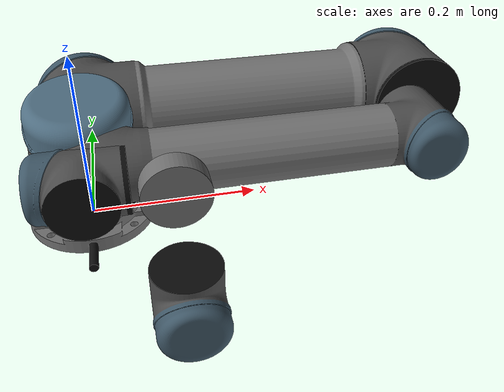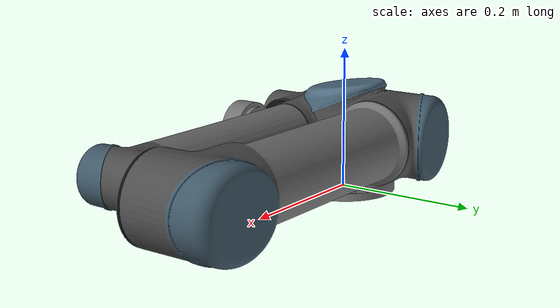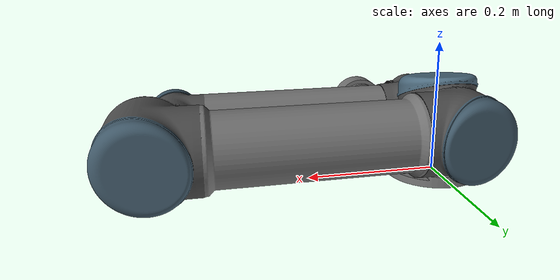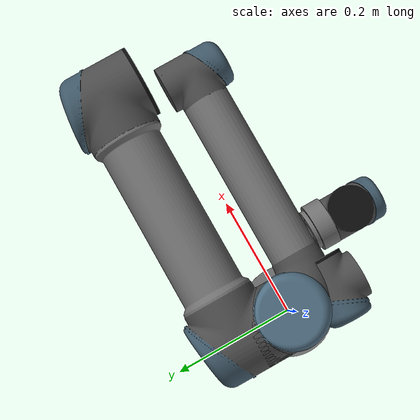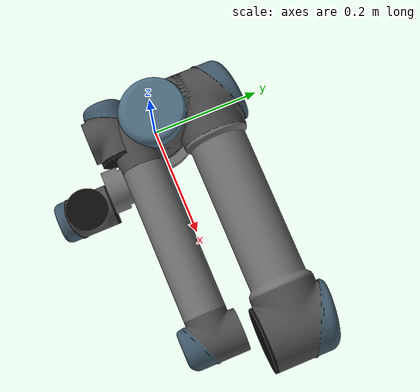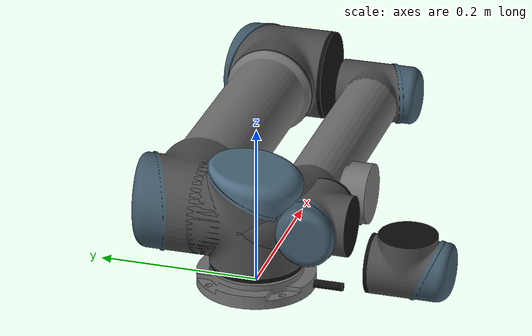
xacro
<?xml version="1.0"?>
<robot xmlns:xacro="http://www.ros.org/wiki/xacro" name="ur5">

  <!-- UR5 Robot Description -->
  <!-- Universal Robots UR5 manipulator arm -->

  <!-- Import UR5 macro -->
  <xacro:include filename="$(find ur5_description)/urdf/ur5_macro.xacro"/>

  <!-- Define UR5 parameters -->
  <xacro:arg name="transmission_hw_interface" default=""/>
  <xacro:arg name="safety_limits" default="false"/>
  <xacro:arg name="safety_pos_margin" default="0.15"/>
  <xacro:arg name="safety_k_position" default="20"/>

  <!-- UR5 macro instance -->
  <xacro:ur5_robot
    prefix=""
    joint_limited="false"
    shoulder_pan_lower_limit="${-pi}"
    shoulder_pan_upper_limit="${pi}"
    shoulder_lift_lower_limit="${-pi}"
    shoulder_lift_upper_limit="${pi}"
    elbow_joint_lower_limit="${-pi}"
    elbow_joint_upper_limit="${pi}"
    wrist_1_lower_limit="${-pi}"
    wrist_1_upper_limit="${pi}"
    wrist_2_lower_limit="${-pi}"
    wrist_2_upper_limit="${pi}"
    wrist_3_lower_limit="${-pi}"
    wrist_3_upper_limit="${pi}"
    transmission_hw_interface="$(arg transmission_hw_interface)"
    safety_limits="$(arg safety_limits)"
    safety_pos_margin="$(arg safety_pos_margin)"
    safety_k_position="$(arg safety_k_position)"
  />

</robot>

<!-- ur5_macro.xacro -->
<robot xmlns:xacro="http://wiki.ros.org/xacro">
  <!--
    Universal Robots UR5
  -->
  <xacro:macro name="ur5_robot" params="prefix joint_limited
    shoulder_pan_lower_limit:=${-pi} shoulder_pan_upper_limit:=${pi}
    shoulder_lift_lower_limit:=${-pi} shoulder_lift_upper_limit:=${pi}
    elbow_joint_lower_limit:=${-pi} elbow_joint_upper_limit:=${pi}
    wrist_1_lower_limit:=${-pi} wrist_1_upper_limit:=${pi}
    wrist_2_lower_limit:=${-pi} wrist_2_upper_limit:=${pi}
    wrist_3_lower_limit:=${-pi} wrist_3_upper_limit:=${pi}
    transmission_hw_interface:=hardware_interface/PositionJointInterface
    safety_limits:=false safety_pos_margin:=0.15
    safety_k_position:=20">

    <!-- Inertia parameters -->
    <xacro:property name="base_mass" value="4.0" />
    <xacro:property name="shoulder_mass" value="3.7000" />
    <xacro:property name="upper_arm_mass" value="8.3930" />
    <xacro:property name="forearm_mass" value="2.2750" />
    <xacro:property name="wrist_1_mass" value="1.2190" />
    <xacro:property name="wrist_2_mass" value="1.2190" />
    <xacro:property name="wrist_3_mass" value="0.1879" />

    <!-- Link offsets -->
    <xacro:property name="shoulder_y_offset" value="0.089159" />
    <xacro:property name="upper_arm_y_offset" value="-0.13625" />
    <xacro:property name="forearm_y_offset" value="-0.1197" />
    <xacro:property name="wrist_1_z_offset" value="0.093" />
    <xacro:property name="wrist_2_z_offset" value="0.0" />
    <xacro:property name="wrist_3_z_offset" value="0.0" />
    <xacro:property name="wrist_3_length" value="0.0" />

    <!-- Joint limits -->
    <xacro:property name="shoulder_pan_velocity" value="3.15" />
    <xacro:property name="shoulder_lift_velocity" value="3.15" />
    <xacro:property name="elbow_velocity" value="3.15" />
    <xacro:property name="wrist_1_velocity" value="3.2" />
    <xacro:property name="wrist_2_velocity" value="3.2" />
    <xacro:property name="wrist_3_velocity" value="3.2" />

    <!-- Base link -->
    <link name="${prefix}base_link">
      <visual>
        <geometry>
          <mesh filename="package://ur5_description/meshes/ur5/visual/base.dae"/>
        </geometry>
      </visual>
      <collision>
        <geometry>
          <mesh filename="package://ur5_description/meshes/ur5/collision/base.stl"/>
        </geometry>
      </collision>
      <inertial>
        <mass value="${base_mass}"/>
        <origin xyz="0 0 0" rpy="0 0 0"/>
        <inertia ixx="0.00443333156" ixy="0.0" ixz="0.0" iyy="0.00443333156" iyz="0.0" izz="0.0072"/>
      </inertial>
    </link>

    <!-- Shoulder link -->
    <link name="${prefix}shoulder_link">
      <visual>
        <geometry>
          <mesh filename="package://ur5_description/meshes/ur5/visual/shoulder.dae"/>
        </geometry>
      </visual>
      <collision>
        <geometry>
          <mesh filename="package://ur5_description/meshes/ur5/collision/shoulder.stl"/>
        </geometry>
      </collision>
      <inertial>
        <mass value="${shoulder_mass}"/>
        <origin xyz="0 0 0" rpy="0 0 0"/>
        <inertia ixx="0.010267495893" ixy="0.0" ixz="0.0" iyy="0.010267495893" iyz="0.0" izz="0.00666"/>
      </inertial>
    </link>

    <!-- Upper arm link -->
    <link name="${prefix}upper_arm_link">
      <visual>
        <geometry>
          <mesh filename="package://ur5_description/meshes/ur5/visual/upperarm.dae"/>
        </geometry>
      </visual>
      <collision>
        <geometry>
          <mesh filename="package://ur5_description/meshes/ur5/collision/upperarm.stl"/>
        </geometry>
      </collision>
      <inertial>
        <mass value="${upper_arm_mass}"/>
        <origin xyz="0 ${upper_arm_y_offset} 0" rpy="0 0 0"/>
        <inertia ixx="0.133886" ixy="0.0" ixz="0.0" iyy="0.0151074" iyz="0.0" izz="0.13774"/>
      </inertial>
    </link>

    <!-- Forearm link -->
    <link name="${prefix}forearm_link">
      <visual>
        <geometry>
          <mesh filename="package://ur5_description/meshes/ur5/visual/forearm.dae"/>
        </geometry>
      </visual>
      <collision>
        <geometry>
          <mesh filename="package://ur5_description/meshes/ur5/collision/forearm.stl"/>
        </geometry>
      </collision>
      <inertial>
        <mass value="${forearm_mass}"/>
        <origin xyz="0 ${forearm_y_offset} 0" rpy="0 0 0"/>
        <inertia ixx="0.0311898" ixy="0.0" ixz="0.0" iyy="0.004095" iyz="0.0" izz="0.0311898"/>
      </inertial>
    </link>

    <!-- Wrist 1 link -->
    <link name="${prefix}wrist_1_link">
      <visual>
        <geometry>
          <mesh filename="package://ur5_description/meshes/ur5/visual/wrist1.dae"/>
        </geometry>
      </visual>
      <collision>
        <geometry>
          <mesh filename="package://ur5_description/meshes/ur5/collision/wrist1.stl"/>
        </geometry>
      </collision>
      <inertial>
        <mass value="${wrist_1_mass}"/>
        <origin xyz="0 ${wrist_1_z_offset} 0" rpy="0 0 0"/>
        <inertia ixx="0.0025599" ixy="0.0" ixz="0.0" iyy="0.000792168" iyz="0.0" izz="0.0025599"/>
      </inertial>
    </link>

    <!-- Wrist 2 link -->
    <link name="${prefix}wrist_2_link">
      <visual>
        <geometry>
          <mesh filename="package://ur5_description/meshes/ur5/visual/wrist2.dae"/>
        </geometry>
      </visual>
      <collision>
        <geometry>
          <mesh filename="package://ur5_description/meshes/ur5/collision/wrist2.stl"/>
        </geometry>
      </collision>
      <inertial>
        <mass value="${wrist_2_mass}"/>
        <origin xyz="0 ${wrist_2_z_offset} 0" rpy="0 0 0"/>
        <inertia ixx="0.0025599" ixy="0.0" ixz="0.0" iyy="0.000792168" iyz="0.0" izz="0.0025599"/>
      </inertial>
    </link>

    <!-- Wrist 3 link -->
    <link name="${prefix}wrist_3_link">
      <visual>
        <geometry>
          <mesh filename="package://ur5_description/meshes/ur5/visual/wrist3.dae"/>
        </geometry>
      </visual>
      <collision>
        <geometry>
          <mesh filename="package://ur5_description/meshes/ur5/collision/wrist3.stl"/>
        </geometry>
      </collision>
      <inertial>
        <mass value="${wrist_3_mass}"/>
        <origin xyz="0 ${wrist_3_z_offset} 0" rpy="0 0 0"/>
        <inertia ixx="0.000132134" ixy="0.0" ixz="0.0" iyy="0.000132134" iyz="0.0" izz="0.00021942"/>
      </inertial>
    </link>

    <!-- Joints -->
    <joint name="${prefix}shoulder_pan_joint" type="revolute">
      <parent link="${prefix}base_link"/>
      <child link="${prefix}shoulder_link"/>
      <origin xyz="0 0 0.089159" rpy="0 0 0"/>
      <axis xyz="0 0 1"/>
      <limit lower="${shoulder_pan_lower_limit}" upper="${shoulder_pan_upper_limit}"
             effort="150.0" velocity="${shoulder_pan_velocity}"/>
      <xacro:if value="${safety_limits}">
        <safety_controller soft_lower_limit="${shoulder_pan_lower_limit + safety_pos_margin}"
                          soft_upper_limit="${shoulder_pan_upper_limit - safety_pos_margin}"
                          k_position="${safety_k_position}" k_velocity="0.0"/>
      </xacro:if>
      <dynamics damping="0" friction="0"/>
    </joint>

    <joint name="${prefix}shoulder_lift_joint" type="revolute">
      <parent link="${prefix}shoulder_link"/>
      <child link="${prefix}upper_arm_link"/>
      <origin xyz="0 ${shoulder_y_offset} 0" rpy="0 ${pi/2} 0"/>
      <axis xyz="0 0 1"/>
      <limit lower="${shoulder_lift_lower_limit}" upper="${shoulder_lift_upper_limit}"
             effort="150.0" velocity="${shoulder_lift_velocity}"/>
      <xacro:if value="${safety_limits}">
        <safety_controller soft_lower_limit="${shoulder_lift_lower_limit + safety_pos_margin}"
                          soft_upper_limit="${shoulder_lift_upper_limit - safety_pos_margin}"
                          k_position="${safety_k_position}" k_velocity="0.0"/>
      </xacro:if>
      <dynamics damping="0" friction="0"/>
    </joint>

    <joint name="${prefix}elbow_joint" type="revolute">
      <parent link="${prefix}upper_arm_link"/>
      <child link="${prefix}forearm_link"/>
      <origin xyz="0 ${upper_arm_y_offset} 0" rpy="0 0 0"/>
      <axis xyz="0 0 1"/>
      <limit lower="${elbow_joint_lower_limit}" upper="${elbow_joint_upper_limit}"
             effort="150.0" velocity="${elbow_velocity}"/>
      <xacro:if value="${safety_limits}">
        <safety_controller soft_lower_limit="${elbow_joint_lower_limit + safety_pos_margin}"
                          soft_upper_limit="${elbow_joint_upper_limit - safety_pos_margin}"
                          k_position="${safety_k_position}" k_velocity="0.0"/>
      </xacro:if>
      <dynamics damping="0" friction="0"/>
    </joint>

    <joint name="${prefix}wrist_1_joint" type="revolute">
      <parent link="${prefix}forearm_link"/>
      <child link="${prefix}wrist_1_link"/>
      <origin xyz="0 ${forearm_y_offset} 0" rpy="0 0 0"/>
      <axis xyz="0 0 1"/>
      <limit lower="${wrist_1_lower_limit}" upper="${wrist_1_upper_limit}"
             effort="28.0" velocity="${wrist_1_velocity}"/>
      <xacro:if value="${safety_limits}">
        <safety_controller soft_lower_limit="${wrist_1_lower_limit + safety_pos_margin}"
                          soft_upper_limit="${wrist_1_upper_limit - safety_pos_margin}"
                          k_position="${safety_k_position}" k_velocity="0.0"/>
      </xacro:if>
      <dynamics damping="0" friction="0"/>
    </joint>

    <joint name="${prefix}wrist_2_joint" type="revolute">
      <parent link="${prefix}wrist_1_link"/>
      <child link="${prefix}wrist_2_link"/>
      <origin xyz="0 0 ${wrist_1_z_offset}" rpy="0 ${pi/2} 0"/>
      <axis xyz="0 0 1"/>
      <limit lower="${wrist_2_lower_limit}" upper="${wrist_2_upper_limit}"
             effort="28.0" velocity="${wrist_2_velocity}"/>
      <xacro:if value="${safety_limits}">
        <safety_controller soft_lower_limit="${wrist_2_lower_limit + safety_pos_margin}"
                          soft_upper_limit="${wrist_2_upper_limit - safety_pos_margin}"
                          k_position="${safety_k_position}" k_velocity="0.0"/>
      </xacro:if>
      <dynamics damping="0" friction="0"/>
    </joint>

    <joint name="${prefix}wrist_3_joint" type="revolute">
      <parent link="${prefix}wrist_2_link"/>
      <child link="${prefix}wrist_3_link"/>
      <origin xyz="0 0 ${wrist_2_z_offset}" rpy="0 0 0"/>
      <axis xyz="0 0 1"/>
      <limit lower="${wrist_3_lower_limit}" upper="${wrist_3_upper_limit}"
             effort="28.0" velocity="${wrist_3_velocity}"/>
      <xacro:if value="${safety_limits}">
        <safety_controller soft_lower_limit="${wrist_3_lower_limit + safety_pos_margin}"
                          soft_upper_limit="${wrist_3_upper_limit - safety_pos_margin}"
                          k_position="${safety_k_position}" k_velocity="0.0"/>
      </xacro:if>
      <dynamics damping="0" friction="0"/>
    </joint>

    <!-- Tool frame -->
    <link name="${prefix}tool0"/>
    <joint name="${prefix}tool0_joint" type="fixed">
      <parent link="${prefix}wrist_3_link"/>
      <child link="${prefix}tool0"/>
      <origin xyz="0 0 ${wrist_3_length}" rpy="0 ${pi/2} ${pi/2}"/>
    </joint>

  </xacro:macro>
</robot>
